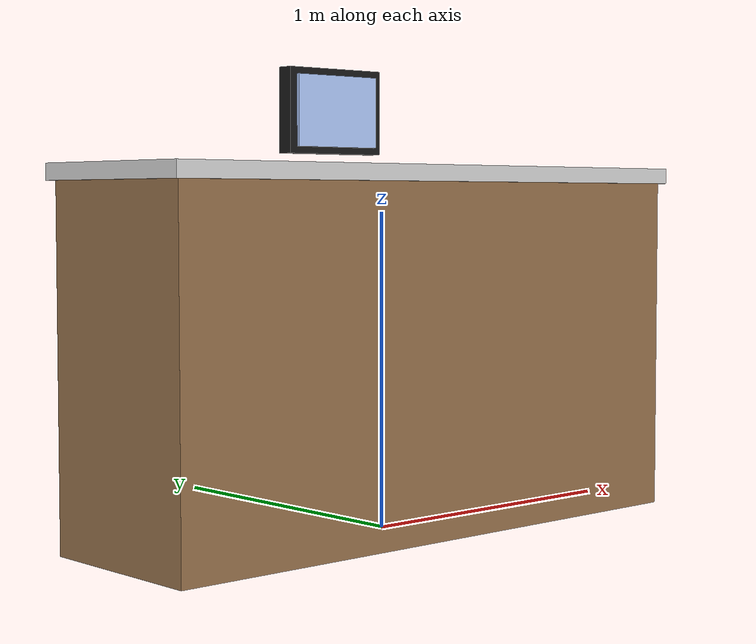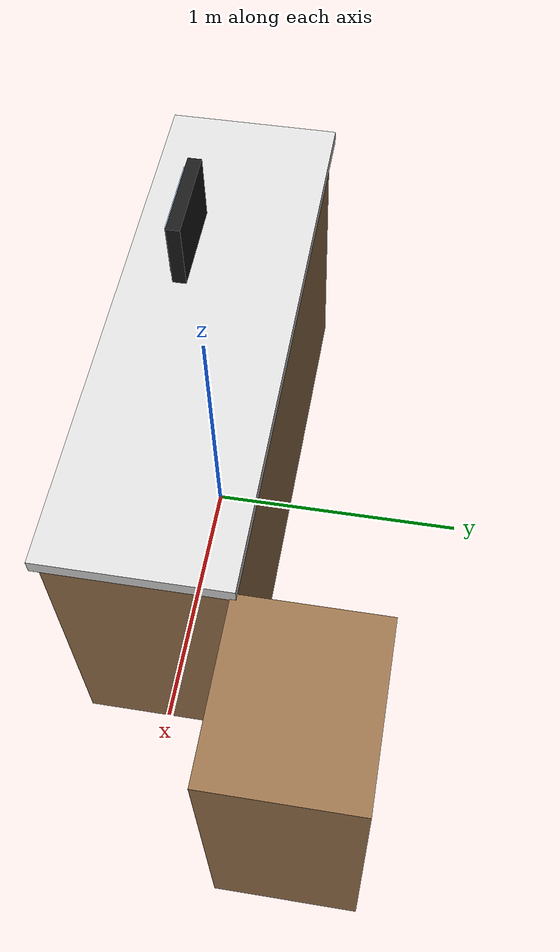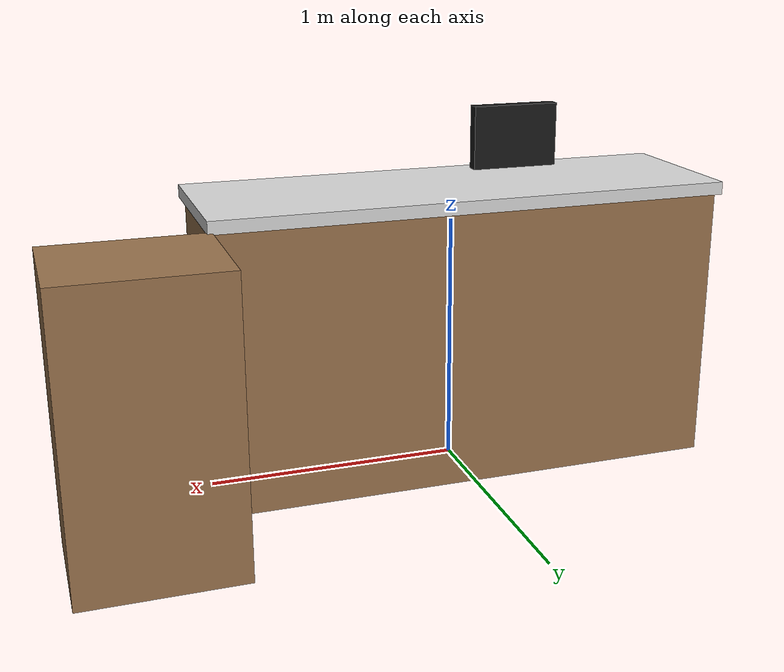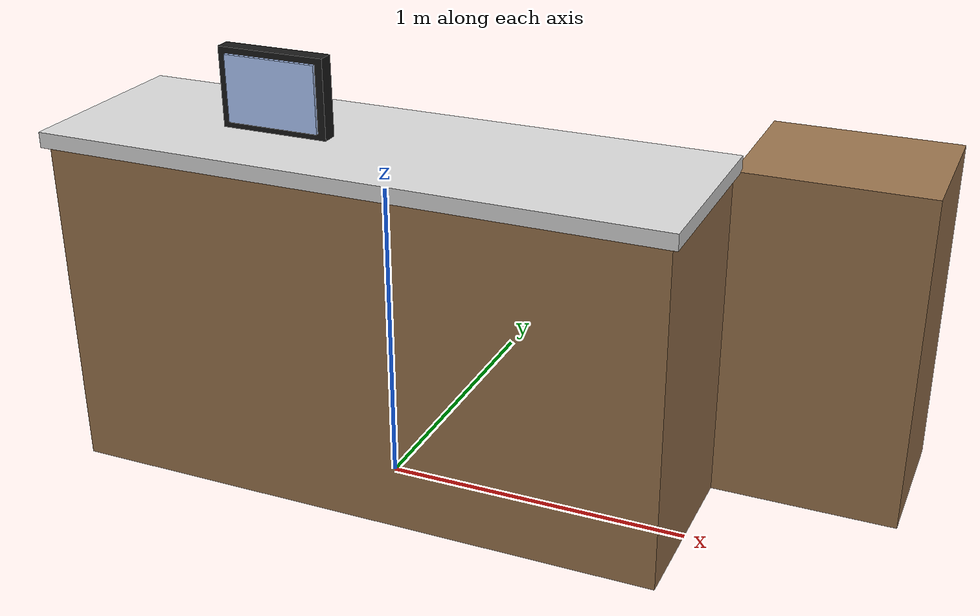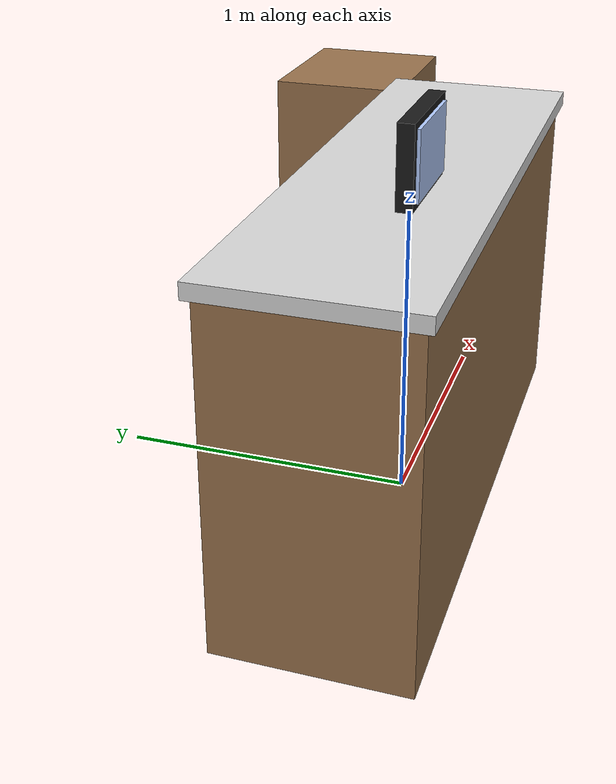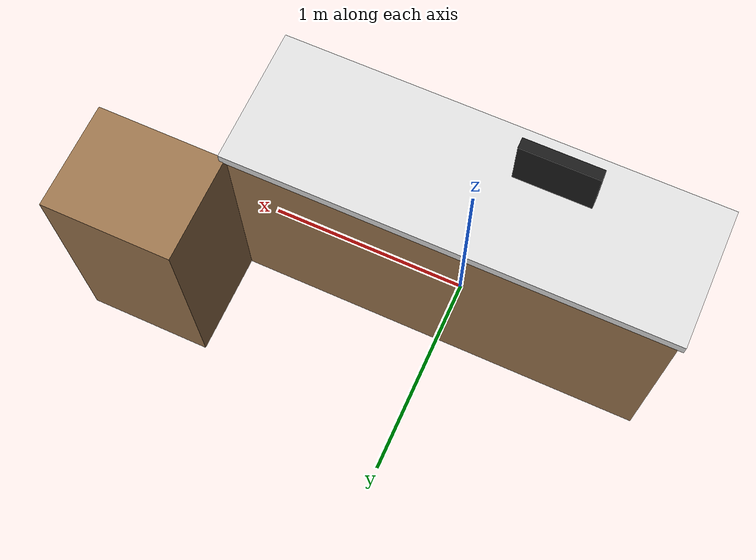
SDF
<?xml version="1.0"?>
<sdf version="1.6">
  <model name="reception_desk">
    <static>true</static>
    <!-- Main counter -->
    <link name="main_counter">
      <pose>0 0 0.55 0 0 0</pose>
      <collision name="c"><geometry><box><size>2.0 0.6 1.1</size></box></geometry></collision>
      <visual name="v">
        <geometry><box><size>2.0 0.6 1.1</size></box></geometry>
        <material><ambient>0.6 0.45 0.3 1</ambient><diffuse>0.6 0.45 0.3 1</diffuse></material>
      </visual>
    </link>
    <!-- Counter top -->
    <link name="top">
      <pose>0 0 1.12 0 0 0</pose>
      <collision name="c"><geometry><box><size>2.04 0.64 0.05</size></box></geometry></collision>
      <visual name="v">
        <geometry><box><size>2.04 0.64 0.05</size></box></geometry>
        <material><ambient>0.85 0.85 0.85 1</ambient><diffuse>0.85 0.85 0.85 1</diffuse></material>
      </visual>
    </link>
    <!-- Side wing -->
    <link name="wing">
      <pose>1.3 0.55 0.55 0 0 0</pose>
      <collision name="c"><geometry><box><size>0.6 0.5 1.1</size></box></geometry></collision>
      <visual name="v">
        <geometry><box><size>0.6 0.5 1.1</size></box></geometry>
        <material><ambient>0.6 0.45 0.3 1</ambient><diffuse>0.6 0.45 0.3 1</diffuse></material>
      </visual>
    </link>
    <!-- Computer monitor -->
    <link name="monitor">
      <pose>-0.3 -0.1 1.3 0 0 0</pose>
      <collision name="c"><geometry><box><size>0.35 0.05 0.25</size></box></geometry></collision>
      <visual name="v">
        <geometry><box><size>0.35 0.05 0.25</size></box></geometry>
        <material><ambient>0.1 0.1 0.1 1</ambient><diffuse>0.1 0.1 0.1 1</diffuse></material>
      </visual>
    </link>
    <!-- Screen glow -->
    <link name="screen">
      <pose>-0.3 -0.13 1.3 0 0 0</pose>
      <visual name="v">
        <geometry><box><size>0.3 0.01 0.21</size></box></geometry>
        <material><ambient>0.7 0.8 1 1</ambient><diffuse>0.7 0.8 1 1</diffuse>
          <emissive>0.3 0.4 0.8 1</emissive></material>
      </visual>
    </link>
  </model>
</sdf>
